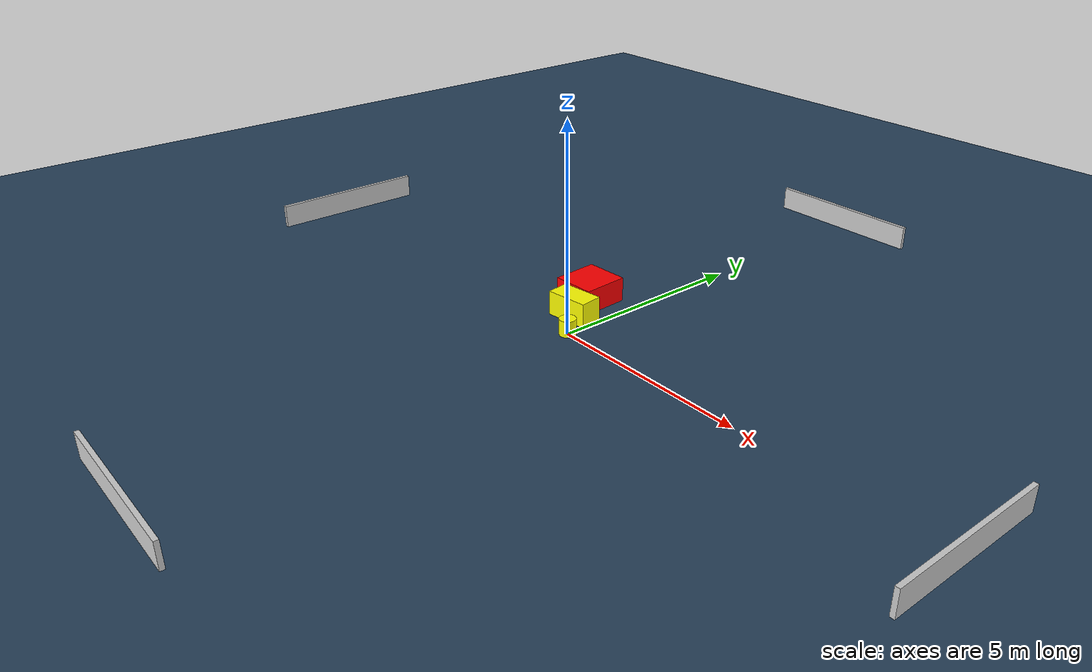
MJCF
<?xml version="1.0" ?>
<mujoco model="generated_environment">
  <option timestep="0.01" integrator="RK4" cone="elliptic"/>
  <default>
    <geom density="1"/>
  </default>
  <asset>
    <texture builtin="gradient" height="3072" name="skybox" rgb1="0.3 0.5 0.7" rgb2="0 0 0" type="skybox" width="512"/>
    <texture builtin="checker" height="300" name="groundplane" rgb1="0.2 0.3 0.4" rgb2="0.1 0.2 0.3" type="2d" width="300"/>
    <material name="groundplane" reflectance="0.2" texrepeat="5 5" texture="groundplane"/>
  </asset>
  <worldbody>
    <light dir="0 0 -1" directional="true" pos="0 0 1.5"/>
    <geom condim="3" friction="0.5 0.005 0.001" material="groundplane" name="floor" pos="0 0 0" size="0 0 0.05" type="plane"/>
    <body name="walls">
      <geom name="wall_1" condim="4" pos="-10.0 0.0 0.3" rgba="0.800000011920929 0.800000011920929 0.800000011920929 1.0" size="0.05 2.0 0.3" type="box"/>
      <geom name="wall_2" condim="4" pos="10.0 0.0 0.3" rgba="0.800000011920929 0.800000011920929 0.800000011920929 1.0" size="0.05 2.0 0.3" type="box"/>
      <geom name="wall_3" condim="4" pos="0.0 -10.0 0.3" rgba="0.800000011920929 0.800000011920929 0.800000011920929 1.0" size="2.0 0.05 0.3" type="box"/>
      <geom name="wall_4" condim="4" pos="0.0 10.0 0.3" rgba="0.800000011920929 0.800000011920929 0.800000011920929 1.0" size="2.0 0.05 0.3" type="box"/>
    </body>
    <body name="robot">
      <joint name="joint_x" type="slide" pos="0 0 0" axis="1 0 0"/>
      <joint name="joint_y" type="slide" pos="0 0 0" axis="0 1 0"/>
      <geom name="robot" type="cylinder" pos="0.0 0.0 0.2" size="0.2 0.2 0.0" mass="5.0" friction="1.0 0.005 0.0001" condim="4" rgba="1.0 1.0 0.0 1.0"/>
    </body>
    <body name="obstacle_1_movable">
      <geom name="obstacle_1_movable" condim="4" pos="-0.5429976342660563 0.6508499962618556 0.3" euler="0 0 277.167821818264" friction="0.0 0.005 0.001" rgba="1.0 1.0 0.0 1.0" size="0.2784522331896285 0.5308656753850374 0.3" type="box" mass="0.1"/>
      <joint type="free"/>
    </body>
    <body name="obstacle_2_static">
      <geom name="obstacle_2_static" condim="4" pos="-0.9850434847176873 1.5173628722700414 0.3" euler="0 0 3.198791902188991" friction="0.0 0.005 0.001" rgba="1.0 0.0 0.0 1.0" size="0.5368620702470518 0.568723756377113 0.3" type="box"/>
    </body>
  </worldbody>
  <actuator>
    <motor name="actuator_x" joint="joint_x" gear="1" ctrlrange="-1 1"/>
    <motor name="actuator_y" joint="joint_y" gear="1" ctrlrange="-1 1"/>
  </actuator>
</mujoco>
